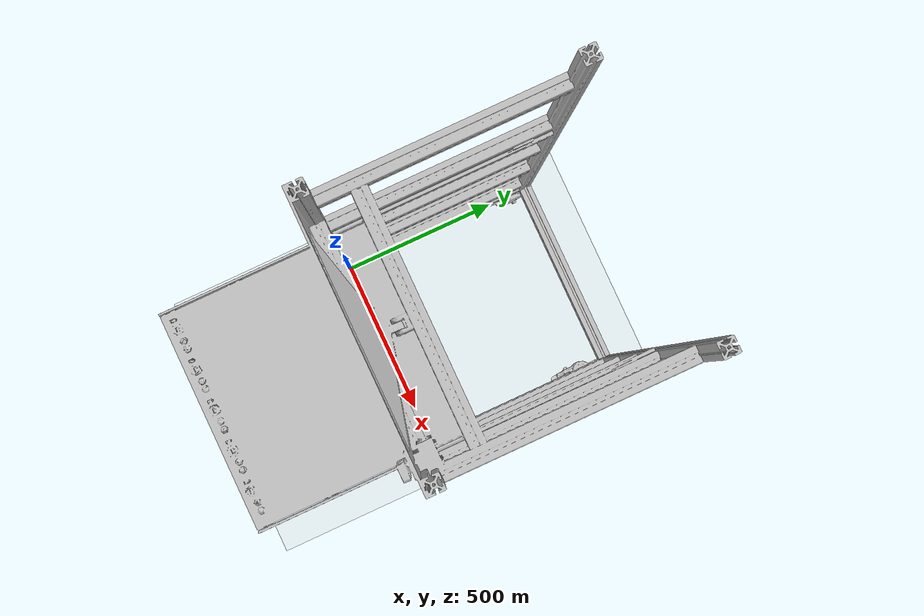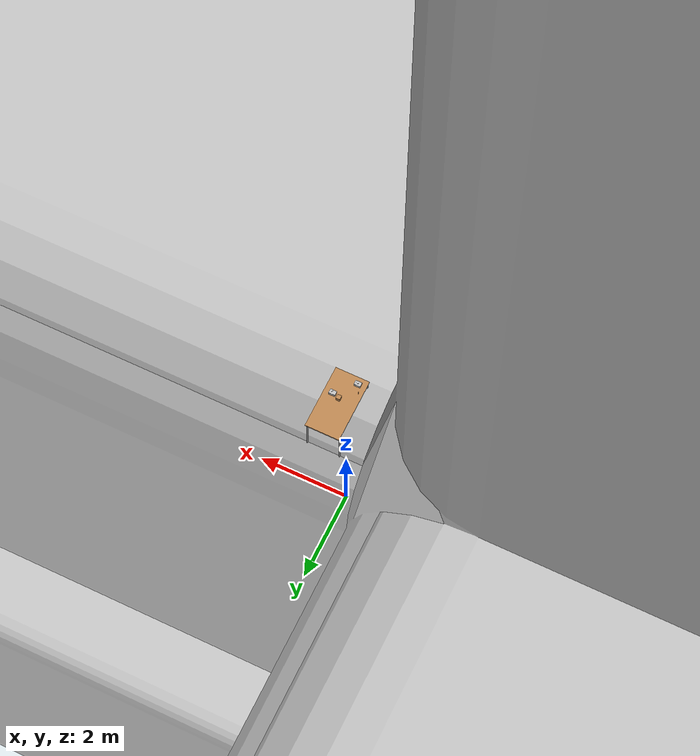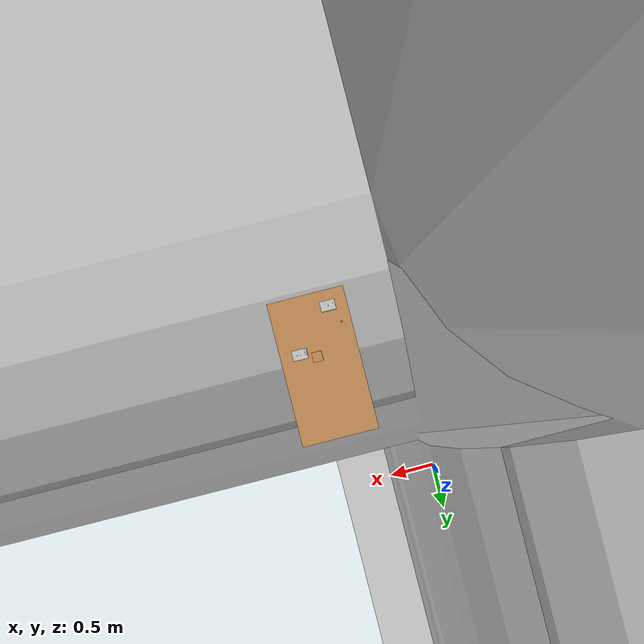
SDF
<sdf version="1.6">
 <world name="default">
  <light name="sun" type="directional">
   <pose>0 0 10 0 -0 0</pose>
   <diffuse>0.8 0.8 0.8 1</diffuse>
   <specular>0.2 0.2 0.2 1</specular>
   <attenuation>
    <range>1000</range>
    <constant>0.9</constant>
    <linear>0.01</linear>
    <quadratic>0.001</quadratic>
   </attenuation>
   <direction>-0.5 0.1 -0.9</direction>
  </light>
  <model name="ground_plane">
   <static>1</static>
   <link name="link">
    <collision name="collision">
     <geometry><plane><normal>0 0 1</normal><size>100 100</size></plane></geometry>
     <surface>
      <contact><collide_bitmask>65535</collide_bitmask></contact>
      <friction><ode><mu>100</mu><mu2>50</mu2></ode></friction>
     </surface>
    </collision>
    <visual name="visual">
     <cast_shadows>0</cast_shadows>
     <geometry><plane><normal>0 0 1</normal><size>100 100</size></plane></geometry>
     <material>
      <script><uri>file://media/materials/scripts/gazebo.material</uri><name>Gazebo/Grey</name></script>
     </material>
    </visual>
   </link>
  </model>
  <gravity>0 0 -9.8</gravity>
  <magnetic_field>6e-06 2.3e-05 -4.2e-05</magnetic_field>
  <atmosphere type="adiabatic"/>
  <physics name="default_physics" default="0" type="ode">
   <max_step_size>0.001</max_step_size>
   <real_time_factor>1</real_time_factor>
   <real_time_update_rate>1000</real_time_update_rate>
  </physics>
  <scene><ambient>0.4 0.4 0.4 1</ambient><background>0.7 0.7 0.7 1</background><shadows>1</shadows></scene>
  <audio><device>default</device></audio>
  <spherical_coordinates>
   <surface_model>EARTH_WGS84</surface_model>
   <latitude_deg>0</latitude_deg>
   <longitude_deg>0</longitude_deg>
   <elevation>0</elevation>
   <heading_deg>0</heading_deg>
  </spherical_coordinates>
  <model name="interface">
   <static>1</static>
   <link name="chassis">
    <collision name="collision"><geometry><box><size>0.5 0.5 2</size></box></geometry></collision>
    <visual name="visual">
     <geometry>
      <mesh><uri>/catkin_ws/src/experimentdevel/world/interface/meshes/interface_dec.dae</uri></mesh>
     </geometry>
    </visual>
   </link>
   <pose>0 0 1 0 -0 0</pose>
  </model>
  <model name="table">
   <static>1</static>
   <link name="link">
    <collision name="surface">
     <pose>0 0 1 0 -0 0</pose>
     <geometry><box><size>1.5 0.8 0.03</size></box></geometry>
     <surface><friction><ode><mu>0.6</mu><mu2>0.6</mu2></ode></friction></surface>
    </collision>
    <visual name="visual1">
     <pose>0 0 1 0 -0 0</pose>
     <geometry><box><size>1.5 0.8 0.03</size></box></geometry>
     <material>
      <script><uri>file://media/materials/scripts/gazebo.material</uri><name>Gazebo/Wood</name></script>
     </material>
    </visual>
    <collision name="front_left_leg">
     <pose>0.68 0.38 0.5 0 -0 0</pose>
     <geometry><cylinder><radius>0.02</radius><length>1</length></cylinder></geometry>
    </collision>
    <visual name="front_left_leg">
     <pose>0.68 0.38 0.5 0 -0 0</pose>
     <geometry><cylinder><radius>0.02</radius><length>1</length></cylinder></geometry>
     <material>
      <script><uri>file://media/materials/scripts/gazebo.material</uri><name>Gazebo/Grey</name></script>
     </material>
    </visual>
    <collision name="front_right_leg">
     <pose>0.68 -0.38 0.5 0 -0 0</pose>
     <geometry><cylinder><radius>0.02</radius><length>1</length></cylinder></geometry>
    </collision>
    <visual name="front_right_leg">
     <pose>0.68 -0.38 0.5 0 -0 0</pose>
     <geometry><cylinder><radius>0.02</radius><length>1</length></cylinder></geometry>
     <material>
      <script><uri>file://media/materials/scripts/gazebo.material</uri><name>Gazebo/Grey</name></script>
     </material>
    </visual>
    <collision name="back_right_leg">
     <pose>-0.68 -0.38 0.5 0 -0 0</pose>
     <geometry><cylinder><radius>0.02</radius><length>1</length></cylinder></geometry>
    </collision>
    <visual name="back_right_leg">
     <pose>-0.68 -0.38 0.5 0 -0 0</pose>
     <geometry><cylinder><radius>0.02</radius><length>1</length></cylinder></geometry>
     <material>
      <script><uri>file://media/materials/scripts/gazebo.material</uri><name>Gazebo/Grey</name></script>
     </material>
    </visual>
    <collision name="back_left_leg">
     <pose>-0.68 0.38 0.5 0 -0 0</pose>
     <geometry><cylinder><radius>0.02</radius><length>1</length></cylinder></geometry>
    </collision>
    <visual name="back_left_leg">
     <pose>-0.68 0.38 0.5 0 -0 0</pose>
     <geometry><cylinder><radius>0.02</radius><length>1</length></cylinder></geometry>
     <material>
      <script><uri>file://media/materials/scripts/gazebo.material</uri><name>Gazebo/Grey</name></script>
     </material>
    </visual>
   </link>
   <pose>0.911818 -1.46086 0 0 -0 1.571</pose>
  </model>
  <model name="wood_cube_10cm">
   <link name="link">
    <pose>0 0 0.05 0 -0 0</pose>
    <inertial>
     <mass>0.5167</mass>
     <inertia>
      <ixx>0.000861167</ixx>
      <ixy>0</ixy>
      <ixz>0</ixz>
      <iyy>0.000861167</iyy>
      <iyz>0</iyz>
      <izz>0.000861167</izz>
     </inertia>
    </inertial>
    <collision name="collision">
     <geometry><box><size>0.1 0.1 0.1</size></box></geometry>
     <surface>
      <contact>
       <poissons_ratio>0.347</poissons_ratio>
       <elastic_modulus>8.8e+09</elastic_modulus>
       <ode><kp>100000</kp><kd>100</kd><max_vel>100</max_vel><min_depth>0.001</min_depth></ode>
      </contact>
      <friction>
       <torsional>
        <coefficient>1</coefficient>
        <use_patch_radius>0</use_patch_radius>
        <surface_radius>0.01</surface_radius>
       </torsional>
      </friction>
     </surface>
    </collision>
    <visual name="visual">
     <geometry><box><size>0.1 0.1 0.1</size></box></geometry>
     <material>
      <script><uri>file://media/materials/scripts/gazebo.material</uri><name>Gazebo/Wood</name></script>
     </material>
    </visual>
   </link>
   <pose>0.936677 -1.57088 1.01399 0 -0 0</pose>
  </model>
  <model name="wooden_peg">
   <link name="link">
    <pose>0 0 0.04 0 -0 0</pose>
    <inertial>
     <mass>0.0175</mass>
     <inertia>
      <ixx>9.74923e-06</ixx>
      <ixy>0</ixy>
      <ixz>0</ixz>
      <iyy>9.74923e-06</iyy>
      <iyz>0</iyz>
      <izz>8.31797e-07</izz>
     </inertia>
    </inertial>
    <collision name="collision">
     <geometry><cylinder><radius>0.00975</radius><length>0.08</length></cylinder></geometry>
     <surface>
      <contact>
       <poissons_ratio>0.347</poissons_ratio>
       <elastic_modulus>8.8e+09</elastic_modulus>
       <ode><kp>100000</kp><kd>100</kd><max_vel>100</max_vel><min_depth>0.001</min_depth></ode>
      </contact>
      <friction>
       <torsional>
        <coefficient>1</coefficient>
        <use_patch_radius>0</use_patch_radius>
        <surface_radius>0.01</surface_radius>
       </torsional>
      </friction>
     </surface>
    </collision>
    <visual name="visual">
     <geometry><cylinder><radius>0.00975</radius><length>0.08</length></cylinder></geometry>
     <material>
      <script><uri>file://media/materials/scripts/gazebo.material</uri><name>Gazebo/Wood</name></script>
     </material>
    </visual>
   </link>
   <pose>0.611567 -1.857 1.01433 0.033987 0.002571 9.8e-05</pose>
  </model>
  <model name="module">
   <static>0</static>
   <link name="chassis">
    <collision name="collision"><geometry><box><size>0.16 0.12 0.08</size></box></geometry></collision>
    <visual name="visual">
     <geometry><mesh><uri>/catkin_ws/src/experimentdevel/world/module/meshes/module_dec.dae</uri></mesh></geometry>
    </visual>
    <inertial>
     <inertia><ixx>1</ixx><ixy>0</ixy><ixz>0</ixz><iyy>1</iyy><iyz>0</iyz><izz>1</izz></inertia>
     <mass>1</mass>
    </inertial>
   </link>
   <pose>1.10469 -1.63231 1.055 3e-06 2e-06 -7e-06</pose>
  </model>
  <model name="module_0">
   <static>0</static>
   <link name="chassis">
    <collision name="collision"><geometry><box><size>0.16 0.12 0.08</size></box></geometry></collision>
    <visual name="visual">
     <geometry><mesh><uri>/catkin_ws/src/experimentdevel/world/module/meshes/module_dec.dae</uri></mesh></geometry>
    </visual>
    <inertial>
     <inertia><ixx>1</ixx><ixy>0</ixy><ixz>0</ixz><iyy>1</iyy><iyz>0</iyz><izz>1</izz></inertia>
     <mass>1</mass>
    </inertial>
   </link>
   <pose>0.708769 -2.04573 1.05502 0.00036 0 -5e-06</pose>
  </model>
 </world>
</sdf>
